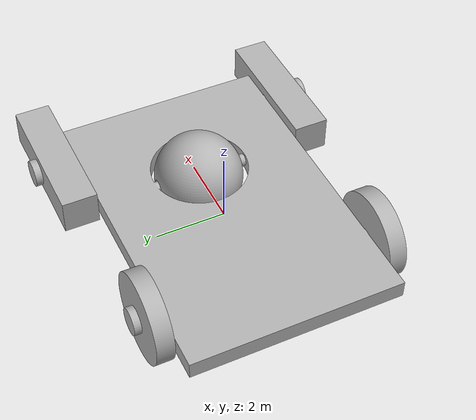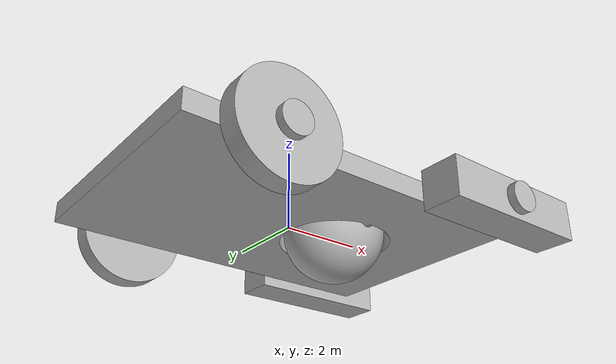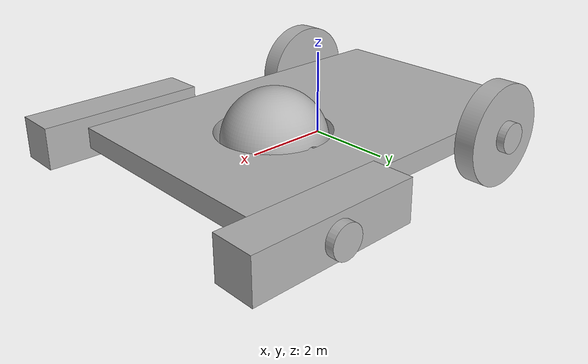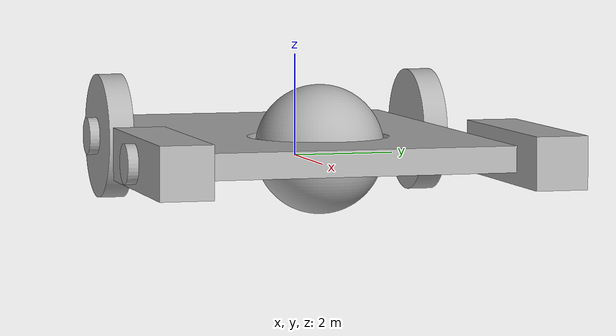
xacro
<?xml version="1.0" ?>
<robot name="bot" xmlns:xacro="http://www.ros.org/wiki/xacro">

<xacro:include filename="$(find bot_description)/urdf/materials.xacro" />
<xacro:include filename="$(find bot_description)/urdf/bot.ros2control" />
<xacro:include filename="$(find bot_description)/urdf/bot.gazebo" />
<link name="base_link">
  <inertial>
    <origin xyz="-0.17031808009976032 0.060000000000000234 0.245" rpy="0 0 0"/>
    <mass value="195901.1654667005"/>
    <inertia ixx="701360.370978" iyy="1422610.998802" izz="2115847.643096" ixy="-0.0" iyz="0.0" ixz="0.0"/>
  </inertial>
  <visual>
    <origin xyz="0 0 0" rpy="0 0 0"/>
    <geometry>
      <mesh filename="file://$(find bot_description)/meshes/base_link.stl" scale="0.001 0.001 0.001"/>
    </geometry>
    <material name="silver"/>
  </visual>
  <collision>
    <origin xyz="0 0 0" rpy="0 0 0"/>
    <geometry>
      <mesh filename="file://$(find bot_description)/meshes/base_link.stl" scale="0.001 0.001 0.001"/>
    </geometry>
  </collision>
</link>

<link name="right_wheel_1">
  <inertial>
    <origin xyz="0.0 0.46999999999999975 5.828670879282072e-16" rpy="0 0 0"/>
    <mass value="18642.55441809832"/>
    <inertia ixx="7906.579199" iyy="15036.385298" izz="7906.579199" ixy="0.0" iyz="-0.0" ixz="0.0"/>
  </inertial>
  <visual>
    <origin xyz="2.5325 3.69 -0.245" rpy="0 0 0"/>
    <geometry>
      <mesh filename="file://$(find bot_description)/meshes/right_wheel_1.stl" scale="0.001 0.001 0.001"/>
    </geometry>
    <material name="silver"/>
  </visual>
  <collision>
    <origin xyz="2.5325 3.69 -0.245" rpy="0 0 0"/>
    <geometry>
      <mesh filename="file://$(find bot_description)/meshes/right_wheel_1.stl" scale="0.001 0.001 0.001"/>
    </geometry>
  </collision>
</link>

<link name="right_leg_1">
  <inertial>
    <origin xyz="8.881784197001252e-15 0.5200000000000027 -1.1102230246251565e-16" rpy="0 0 0"/>
    <mass value="30151.511444509568"/>
    <inertia ixx="5113.491437" iyy="44451.730967" izz="44363.491437" ixy="0.0" iyz="0.0" ixz="-0.0"/>
  </inertial>
  <visual>
    <origin xyz="-3.4675 3.99 -0.245" rpy="0 0 0"/>
    <geometry>
      <mesh filename="file://$(find bot_description)/meshes/right_leg_1.stl" scale="0.001 0.001 0.001"/>
    </geometry>
    <material name="silver"/>
  </visual>
  <collision>
    <origin xyz="-3.4675 3.99 -0.245" rpy="0 0 0"/>
    <geometry>
      <mesh filename="file://$(find bot_description)/meshes/right_leg_1.stl" scale="0.001 0.001 0.001"/>
    </geometry>
  </collision>
</link>

<link name="left_leg_1">
  <inertial>
    <origin xyz="0.0 -0.5199999999999982 -1.1102230246251565e-16" rpy="0 0 0"/>
    <mass value="30151.51144450955"/>
    <inertia ixx="5113.491437" iyy="44451.730967" izz="44363.491437" ixy="0.0" iyz="-0.0" ixz="-0.0"/>
  </inertial>
  <visual>
    <origin xyz="-3.4675 -4.11 -0.245" rpy="0 0 0"/>
    <geometry>
      <mesh filename="file://$(find bot_description)/meshes/left_leg_1.stl" scale="0.001 0.001 0.001"/>
    </geometry>
    <material name="silver"/>
  </visual>
  <collision>
    <origin xyz="-3.4675 -4.11 -0.245" rpy="0 0 0"/>
    <geometry>
      <mesh filename="file://$(find bot_description)/meshes/left_leg_1.stl" scale="0.001 0.001 0.001"/>
    </geometry>
  </collision>
</link>

<link name="left_wheel_1">
  <inertial>
    <origin xyz="0.0 -0.2699999999999987 -5.551115123125783e-16" rpy="0 0 0"/>
    <mass value="18642.55441809832"/>
    <inertia ixx="7906.579199" iyy="15036.385298" izz="7906.579199" ixy="0.0" iyz="0.0" ixz="-0.0"/>
  </inertial>
  <visual>
    <origin xyz="2.5325 -3.61 -0.245" rpy="0 0 0"/>
    <geometry>
      <mesh filename="file://$(find bot_description)/meshes/left_wheel_1.stl" scale="0.001 0.001 0.001"/>
    </geometry>
    <material name="silver"/>
  </visual>
  <collision>
    <origin xyz="2.5325 -3.61 -0.245" rpy="0 0 0"/>
    <geometry>
      <mesh filename="file://$(find bot_description)/meshes/left_wheel_1.stl" scale="0.001 0.001 0.001"/>
    </geometry>
  </collision>
</link>

<link name="support_wheel_1">
  <inertial>
    <origin xyz="0.0 0.029583 -1.1102e-16" rpy="0 0 0"/>
    <mass value="1.5"/>
    <inertia ixx="0.0009" iyy="0.001" izz="0.0009" ixy="0.0" iyz="0.0" ixz="0.0"/>
  </inertial>

  <visual>
    <origin xyz="-1.4675 -0.06 -0.245" rpy="0 0 0"/>
    <geometry>
      <mesh filename="file://$(find bot_description)/meshes/support_wheel_1.stl" scale="0.001 0.001 0.001"/>
    </geometry>
    <material name="silver"/>
  </visual>

  <collision>
    <origin xyz="-1.4675 -0.06 -0.245" rpy="0 0 0"/>
    <geometry>
      <mesh filename="file://$(find bot_description)/meshes/support_wheel_1.stl" scale="0.001 0.001 0.001"/>
    </geometry>
  </collision>
</link>

<joint name="right_wheel_joint" type="continuous">
  <origin xyz="-2.5325 -3.69 0.245" rpy="0 0 0"/>
  <parent link="base_link"/>
  <child link="right_wheel_1"/>
  <axis xyz="0.0 -1.0 0.0"/>
</joint>

<joint name="right_leg_joint" type="continuous">
  <origin xyz="3.4675 -3.99 0.245" rpy="0 0 0"/>
  <parent link="base_link"/>
  <child link="right_leg_1"/>
  <axis xyz="0.0 -1.0 0.0"/>
</joint>

<joint name="left_leg_joint" type="continuous">
  <origin xyz="3.4675 4.11 0.245" rpy="0 0 0"/>
  <parent link="base_link"/>
  <child link="left_leg_1"/>
  <axis xyz="0.0 -1.0 0.0"/>
</joint>

<joint name="left_wheel_joint" type="continuous">
  <origin xyz="-2.5325 3.61 0.245" rpy="0 0 0"/>
  <parent link="base_link"/>
  <child link="left_wheel_1"/>
  <axis xyz="0.0 -1.0 0.0"/>
</joint>

<joint name="support_wheel_joint" type="continuous">
  <origin xyz="1.4675 0.06 0.245" rpy="0 0 0"/>
  <parent link="base_link"/>
  <child link="support_wheel_1"/>
  <axis xyz="0.0 1.0 0.0"/>
</joint>

</robot>

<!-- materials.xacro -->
<robot name="bot" xmlns:xacro="http://www.ros.org/wiki/xacro" >

<material name="silver">
  <color rgba="0.700 0.700 0.700 1.000"/>
</material>

</robot>

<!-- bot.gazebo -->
<robot name="bot" xmlns:xacro="http://www.ros.org/wiki/xacro">

  <xacro:property name="body_color" value="silver" />

  <!-- ==================== Gazebo Material & Physics Properties ==================== -->

  <gazebo reference="base_link">
    <material>${body_color}</material>
    <mu1>0.2</mu1>
    <mu2>0.2</mu2>
    <self_collide>true</self_collide>
    <gravity>true</gravity>
  </gazebo>

  <gazebo reference="right_wheel_1">
    <material>${body_color}</material>
    <mu1>0.2</mu1>
    <mu2>0.2</mu2>
    <self_collide>true</self_collide>
  </gazebo>

  <gazebo reference="right_leg_1">
    <material>${body_color}</material>
    <mu1>0.2</mu1>
    <mu2>0.2</mu2>
    <self_collide>true</self_collide>
  </gazebo>

  <gazebo reference="left_leg_1">
    <material>${body_color}</material>
    <mu1>0.2</mu1>
    <mu2>0.2</mu2>
    <self_collide>true</self_collide>
  </gazebo>

  <gazebo reference="left_wheel_1">
    <material>${body_color}</material>
    <mu1>0.2</mu1>
    <mu2>0.2</mu2>
    <self_collide>true</self_collide>
  </gazebo>

  <gazebo reference="support_wheel_1">
    <material>${body_color}</material>
    <mu1>0.2</mu1>
    <mu2>0.2</mu2>
    <self_collide>true</self_collide>
  </gazebo>

  <gazebo>
    <plugin filename="gz-sim-joint-state-publisher-system"
            name="gz::sim::systems::JointStatePublisher">
      <joint_name>right_wheel_joint</joint_name>
      <joint_name>left_wheel_joint</joint_name>
      <joint_name>support_wheel_joint</joint_name>
      <joint_name>right_leg_joint</joint_name>
      <joint_name>left_leg_joint</joint_name>
    </plugin>
  </gazebo>

  <gazebo>
    <!-- Right Wheel -->
    <plugin filename="gz-sim-joint-controller-system"
            name="gz::sim::systems::JointController">
      <joint_name>right_wheel_joint</joint_name>
      <use_force_commands>false</use_force_commands>
      <topic>/model/bot/joint/right_wheel_joint/cmd_vel</topic>
    </plugin>

    <!-- Left Wheel -->
    <plugin filename="gz-sim-joint-controller-system"
            name="gz::sim::systems::JointController">
      <joint_name>left_wheel_joint</joint_name>
      <use_force_commands>false</use_force_commands>
      <topic>/model/bot/joint/left_wheel_joint/cmd_vel</topic>
    </plugin>

    <!-- Support Wheel -->
    <plugin filename="gz-sim-joint-controller-system"
            name="gz::sim::systems::JointController">
      <joint_name>support_wheel_joint</joint_name>
      <use_force_commands>false</use_force_commands>
      <topic>/model/bot/joint/support_wheel_joint/cmd_vel</topic>
    </plugin>
  <!-- Right Leg -->
    <plugin filename="gz-sim-joint-controller-system"
            name="gz::sim::systems::JointController">
      <joint_name>right_leg_joint</joint_name>
      <use_force_commands>false</use_force_commands>
      <topic>/model/bot/joint/right_leg_joint/cmd_vel</topic>
    </plugin>

    <!-- Left Leg -->
    <plugin filename="gz-sim-joint-controller-system"
            name="gz::sim::systems::JointController">
      <joint_name>left_leg_joint</joint_name>
      <use_force_commands>false</use_force_commands>
      <topic>/model/bot/joint/left_leg_joint/cmd_vel</topic>
    </plugin>

  </gazebo>
</robot>
